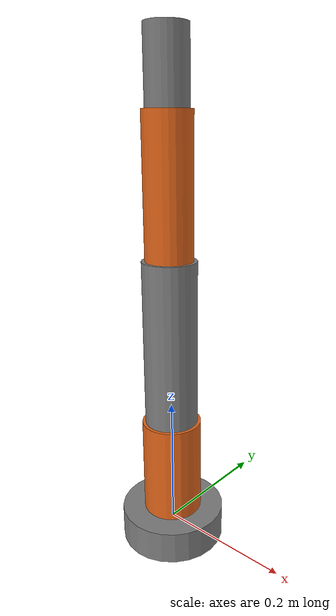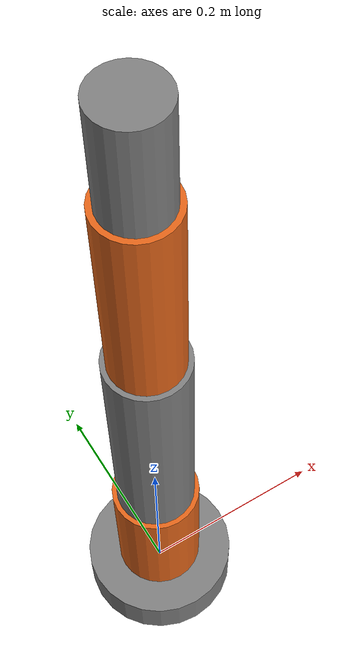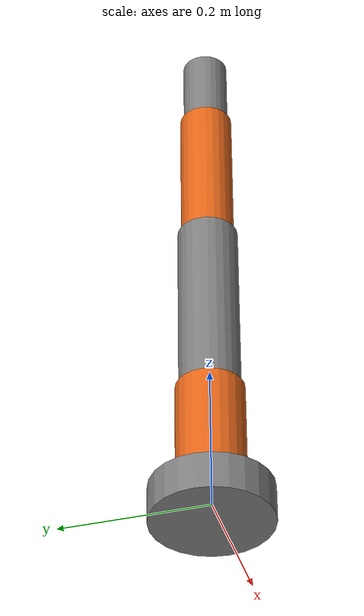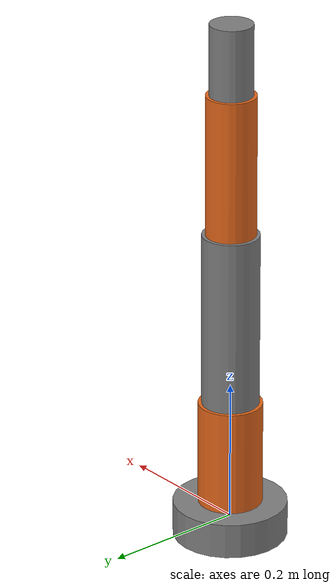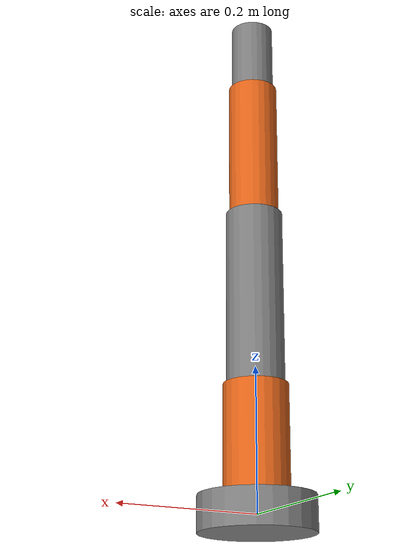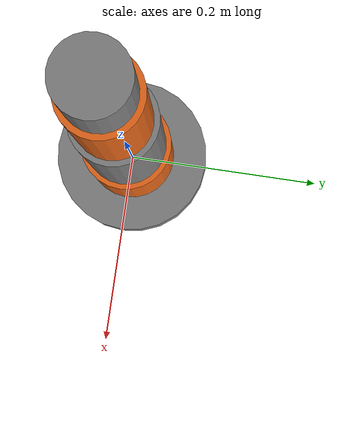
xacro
<?xml version="1.0"?>
<robot xmlns:xacro="http://www.ros.org/wiki/xacro" name="simple_arm">
    <xacro:arg name="initial_positions_file" default="initial_positions.yaml" />

    <!-- Import simple_arm urdf file -->
    <xacro:include filename="$(find arm_description)/urdf/arm.urdf.xacro" />

    <!-- Import control_xacro -->
    <xacro:include filename="simple_arm.ros2_control.xacro" />

    <xacro:simple_arm_ros2_control name="FakeSystem" initial_positions_file="$(arg initial_positions_file)"/>

</robot>

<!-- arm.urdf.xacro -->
<robot xmlns:xacro="http://www.ros.org/wiki/xacro" name="simple_arm">

  <!-- ========== 可调参数（改这里就能改机械臂尺寸） ========== -->
  <xacro:property name="base_radius"  value="0.08"/>
  <xacro:property name="base_height"  value="0.05"/>
  <xacro:property name="link1_height" value="0.15"/>  <!-- 立柱 -->
  <xacro:property name="link2_length" value="0.25"/>  <!-- 大臂 -->
  <xacro:property name="link3_length" value="0.20"/>  <!-- 小臂 -->
  <xacro:property name="link4_length" value="0.10"/>  <!-- 腕部 -->

  <!-- ========== 颜色 ========== -->
  <material name="grey">
    <color rgba="0.5 0.5 0.5 1.0"/>
  </material>
  <material name="orange">
    <color rgba="0.9 0.4 0.1 1.0"/>
  </material>

  <!-- ========== 连杆宏 ==========
       link 原点 = 底端关节处；圆柱/碰撞/质心全部沿 +z 偏移 length/2，
       即连杆从关节处向上伸出，关节轴在端点（正确惯例）。 ========== -->
  <xacro:macro name="arm_link" params="name radius length mass color">
    <link name="${name}">
      <visual>
        <origin xyz="0 0 ${length/2}"/>
        <geometry>
          <cylinder radius="${radius}" length="${length}"/>
        </geometry>
        <material name="${color}"/>
      </visual>
      <collision>
        <origin xyz="0 0 ${length/2}"/>
        <geometry>
          <cylinder radius="${radius}" length="${length}"/>
        </geometry>
      </collision>
      <inertial>
        <origin xyz="0 0 ${length/2}"/>
        <mass value="${mass}"/>
        <inertia
          ixx="${mass * (3*radius**2 + length**2) / 12}"
          ixy="0.0" ixz="0.0"
          iyy="${mass * (3*radius**2 + length**2) / 12}"
          iyz="0.0"
          izz="${mass * radius**2 / 2}"/>
      </inertial>
    </link>
  </xacro:macro>

  <!-- ========== 底座（独立：几何中心就在 base_link 原点） ========== -->
  <link name="base_link">
    <visual>
      <geometry>
        <cylinder radius="${base_radius}" length="${base_height}"/>
      </geometry>
      <material name="grey"/>
    </visual>
    <collision>
      <geometry>
        <cylinder radius="${base_radius}" length="${base_height}"/>
      </geometry>
    </collision>
    <inertial>
      <mass value="2.0"/>
      <inertia
        ixx="${2.0 * (3*base_radius**2 + base_height**2) / 12}" ixy="0.0" ixz="0.0"
        iyy="${2.0 * (3*base_radius**2 + base_height**2) / 12}" iyz="0.0"
        izz="${2.0 * base_radius**2 / 2}"/>
    </inertial>
  </link>

  <!-- ========== 关节1：腰部旋转（绕 z 轴），位于底座顶面 ========== -->
  <joint name="joint1" type="revolute">
    <parent link="base_link"/>
    <child link="link1"/>
    <origin xyz="0 0 ${base_height/2}"/>
    <axis xyz="0 0 1"/>
    <limit lower="${-pi}" upper="${pi}" effort="100" velocity="1.0"/>
  </joint>
  <xacro:arm_link name="link1" radius="0.045" length="${link1_height}" mass="1.0" color="orange"/>

  <!-- ========== 关节2：肩部俯仰（绕 y 轴），位于立柱顶端 ========== -->
  <joint name="joint2" type="revolute">
    <parent link="link1"/>
    <child link="link2"/>
    <origin xyz="0 0 ${link1_height}"/>
    <axis xyz="0 1 0"/>
    <limit lower="${-pi/2}" upper="${pi/2}" effort="100" velocity="1.0"/>
  </joint>
  <xacro:arm_link name="link2" radius="0.04" length="${link2_length}" mass="0.8" color="grey"/>

  <!-- ========== 关节3：肘部俯仰（绕 y 轴），位于大臂顶端 ========== -->
  <joint name="joint3" type="revolute">
    <parent link="link2"/>
    <child link="link3"/>
    <origin xyz="0 0 ${link2_length}"/>
    <axis xyz="0 1 0"/>
    <limit lower="${-2*pi/3}" upper="${2*pi/3}" effort="100" velocity="1.0"/>
  </joint>
  <xacro:arm_link name="link3" radius="0.035" length="${link3_length}" mass="0.5" color="orange"/>

  <!-- ========== 关节4：腕部俯仰（绕 y 轴），位于小臂顶端 ========== -->
  <joint name="joint4" type="revolute">
    <parent link="link3"/>
    <child link="link4"/>
    <origin xyz="0 0 ${link3_length}"/>
    <axis xyz="0 1 0"/>
    <limit lower="${-pi/2}" upper="${pi/2}" effort="50" velocity="1.0"/>
  </joint>
  <xacro:arm_link name="link4" radius="0.03" length="${link4_length}" mass="0.3" color="grey"/>

  <!-- ========== 末端法兰（固定关节，作为 TCP 工具点） ========== -->
  <joint name="joint_tool" type="fixed">
    <parent link="link4"/>
    <child link="tool0"/>
    <origin xyz="0 0 ${link4_length}"/>
  </joint>
  <link name="tool0"/>

</robot>
